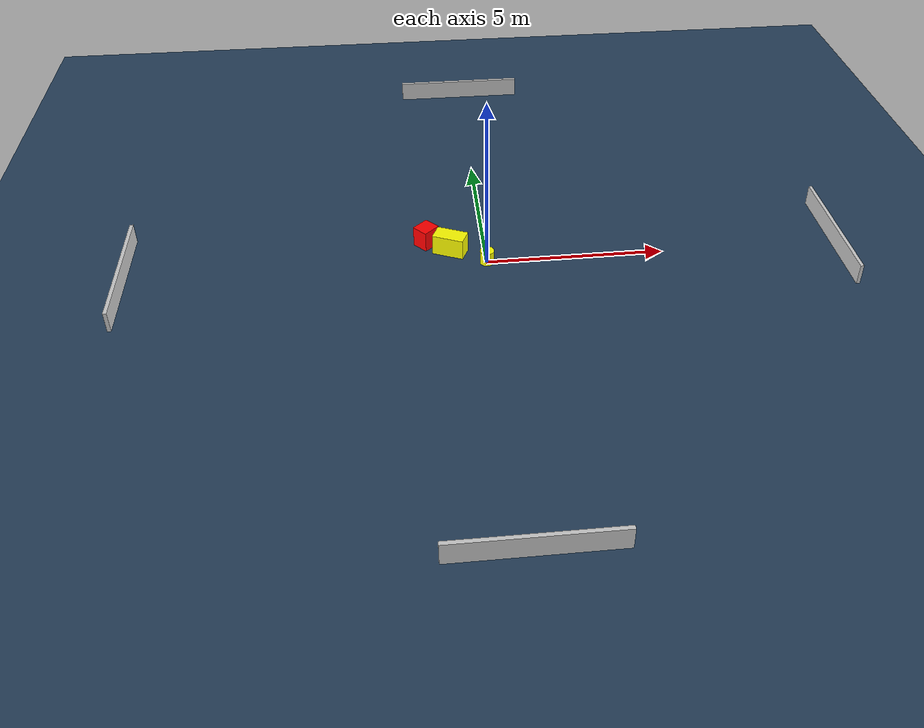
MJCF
<?xml version="1.0" ?>
<mujoco model="generated_environment">
  <option timestep="0.01" integrator="RK4" cone="elliptic"/>
  <default>
    <geom density="1"/>
  </default>
  <asset>
    <texture builtin="gradient" height="3072" name="skybox" rgb1="0.3 0.5 0.7" rgb2="0 0 0" type="skybox" width="512"/>
    <texture builtin="checker" height="300" name="groundplane" rgb1="0.2 0.3 0.4" rgb2="0.1 0.2 0.3" type="2d" width="300"/>
    <material name="groundplane" reflectance="0.2" texrepeat="5 5" texture="groundplane"/>
  </asset>
  <worldbody>
    <light dir="0 0 -1" directional="true" pos="0 0 1.5"/>
    <geom condim="3" friction="0.5 0.005 0.001" material="groundplane" name="floor" pos="0 0 0" size="0 0 0.05" type="plane"/>
    <body name="walls">
      <geom name="wall_1" condim="4" pos="-10.0 0.0 0.3" rgba="0.800000011920929 0.800000011920929 0.800000011920929 1.0" size="0.05 2.0 0.3" type="box"/>
      <geom name="wall_2" condim="4" pos="10.0 0.0 0.3" rgba="0.800000011920929 0.800000011920929 0.800000011920929 1.0" size="0.05 2.0 0.3" type="box"/>
      <geom name="wall_3" condim="4" pos="0.0 -10.0 0.3" rgba="0.800000011920929 0.800000011920929 0.800000011920929 1.0" size="2.0 0.05 0.3" type="box"/>
      <geom name="wall_4" condim="4" pos="0.0 10.0 0.3" rgba="0.800000011920929 0.800000011920929 0.800000011920929 1.0" size="2.0 0.05 0.3" type="box"/>
    </body>
    <body name="robot">
      <joint name="joint_x" type="slide" pos="0 0 0" axis="1 0 0"/>
      <joint name="joint_y" type="slide" pos="0 0 0" axis="0 1 0"/>
      <geom name="robot" type="cylinder" pos="0.0 0.0 0.2" size="0.2 0.2 0.0" mass="5.0" friction="1.0 0.005 0.0001" condim="4" rgba="1.0 1.0 0.0 1.0"/>
    </body>
    <body name="obstacle_1_movable">
      <geom name="obstacle_1_movable" condim="4" pos="-0.9848908294711344 0.6043048812207282 0.3" euler="0 0 156.26708259812565" friction="0.0 0.005 0.001" rgba="1.0 1.0 0.0 1.0" size="0.4508140664894817 0.24334032097869793 0.3" type="box" mass="0.1"/>
      <joint type="free"/>
    </body>
    <body name="obstacle_2_static">
      <geom name="obstacle_2_static" condim="4" pos="-1.6475820569024688 1.0389156791140175 0.3" euler="0 0 222.44671722954004" friction="0.0 0.005 0.001" rgba="1.0 0.0 0.0 1.0" size="0.26590389748004817 0.24241842995700214 0.3" type="box"/>
    </body>
  </worldbody>
  <actuator>
    <motor name="actuator_x" joint="joint_x" gear="1" ctrlrange="-1 1"/>
    <motor name="actuator_y" joint="joint_y" gear="1" ctrlrange="-1 1"/>
  </actuator>
</mujoco>
